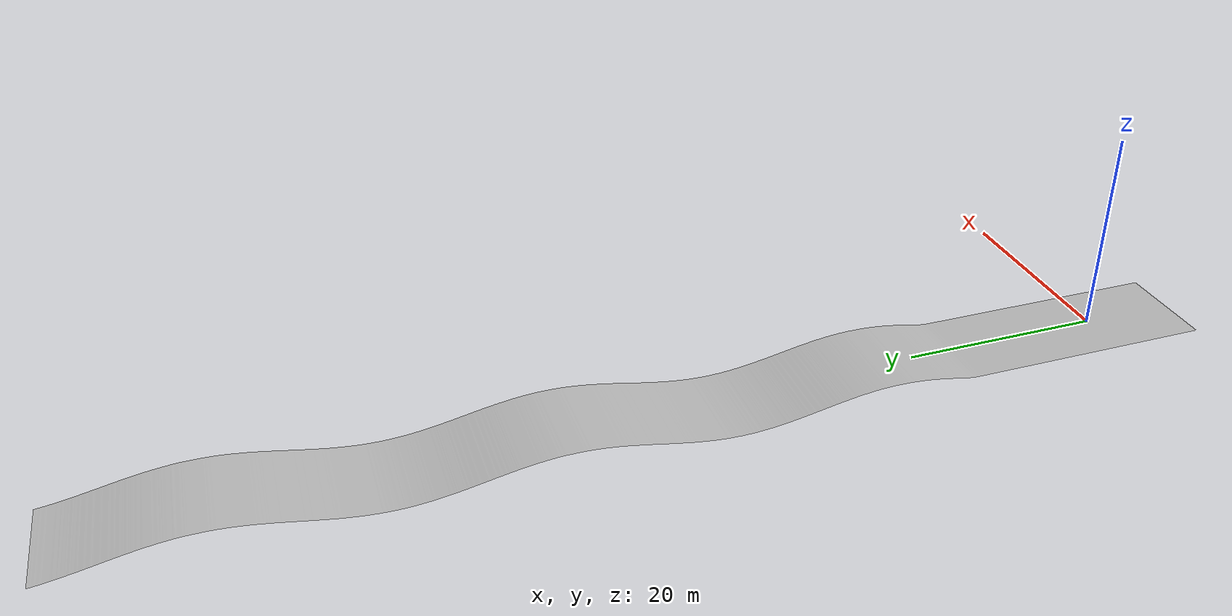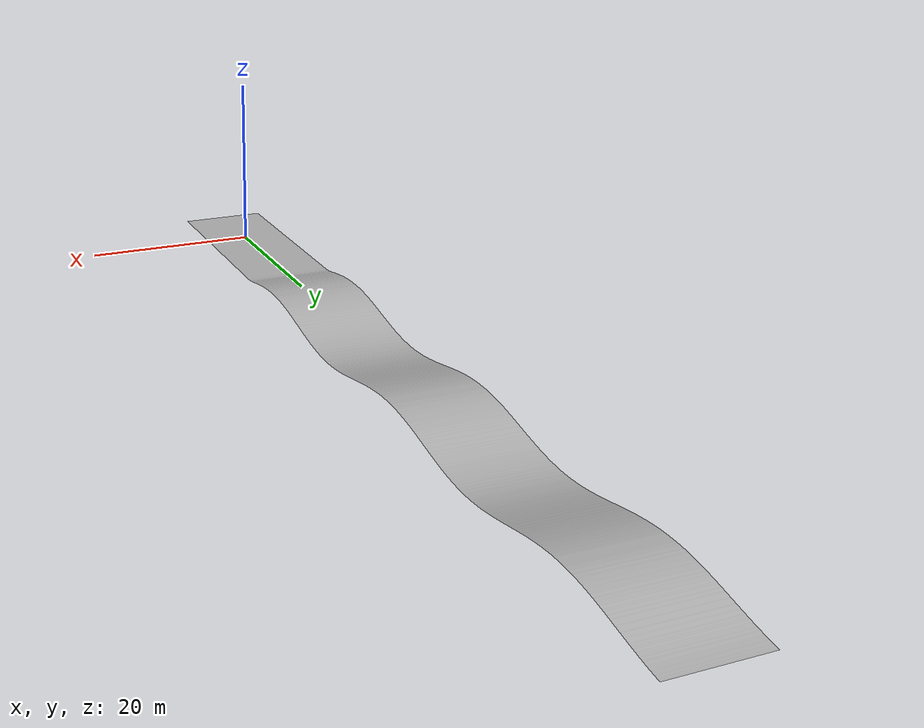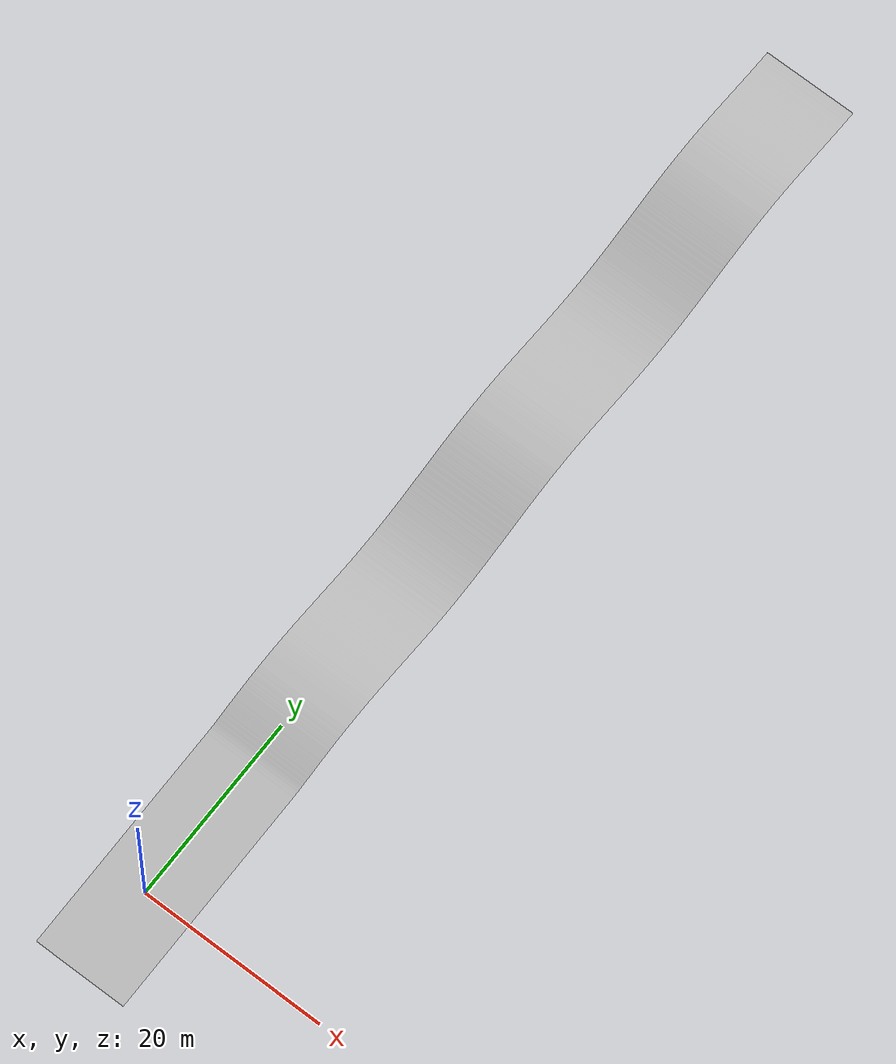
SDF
<?xml version="1.0" ?>
<sdf version="1.5">
     <model name="heightmap">
      <static>true</static>
      <link name="link">
        <collision name="collision">
          <geometry>
            <mesh>
              <uri>model://ariel/bumpyroad.dae</uri>
            </mesh>
          </geometry>
        </collision>
        <visual name="visual_abcedf">
          <geometry>
            <mesh>
              <uri>model://ariel/bumpyroad.dae</uri>
            </mesh>
          </geometry>
        </visual>
      </link>
    </model>
</sdf>
